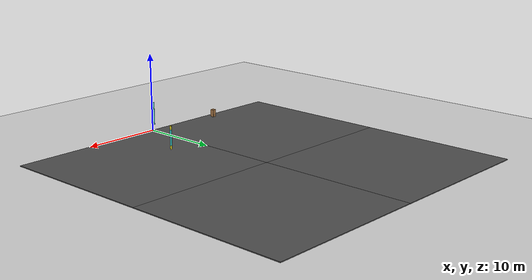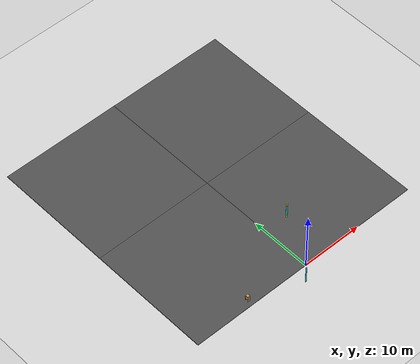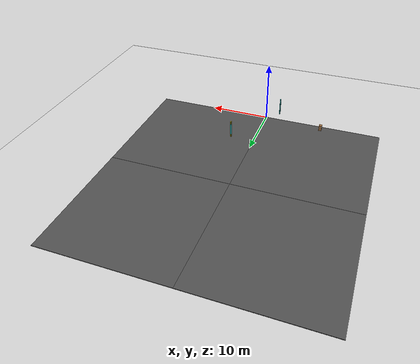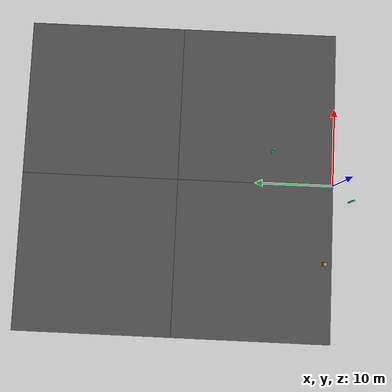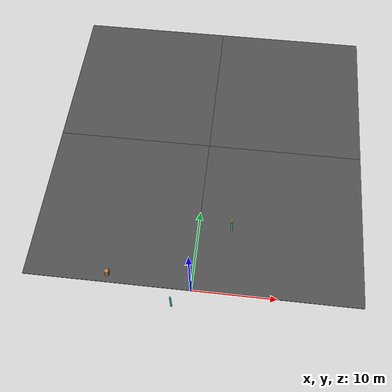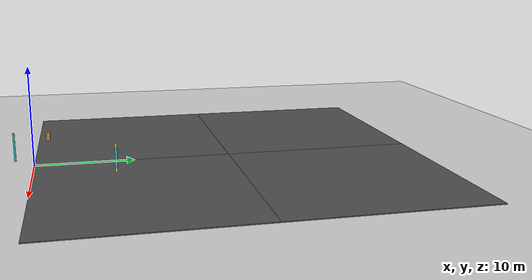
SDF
<sdf version="1.4">
 <world name="default">
  <model name="ground_plane">
   <static>1</static>
   <link name="link">
    <collision name="collision">
     <geometry><plane><normal>0 0 1</normal><size>100 100</size></plane></geometry>
     <surface><friction><ode><mu>100</mu><mu2>50</mu2></ode></friction></surface>
    </collision>
    <visual name="visual">
     <cast_shadows>0</cast_shadows>
     <geometry><plane><normal>0 0 1</normal><size>100 100</size></plane></geometry>
     <material>
      <script><uri>file://media/materials/scripts/gazebo.material</uri><name>Gazebo/Grey</name></script>
     </material>
    </visual>
    <velocity_decay><linear>0</linear><angular>0</angular></velocity_decay>
   </link>
  </model>
  <model name="mikey_goal4">
   <pose>4 8 1.5 0 -0 0</pose>
   <link name="link">
    <inertial>
     <mass>1000</mass>
     <inertia><ixx>1000</ixx><ixy>0</ixy><ixz>0</ixz><iyy>1000</iyy><iyz>0</iyz><izz>1000</izz></inertia>
    </inertial>
    <visual name="visual">
     <geometry><cylinder><radius>0.1</radius><length>3</length></cylinder></geometry>
     <material>
      <script><uri>file://media/materials/scripts/gazebo.material</uri><name>Gazebo/Yellow</name></script>
     </material>
    </visual>
    <velocity_decay><linear>0</linear><angular>0</angular></velocity_decay>
   </link>
   <static>1</static>
  </model>
  <model name="shredder_goal1">
   <pose>-2 -2 1.5 0 -0 0</pose>
   <link name="link">
    <inertial>
     <mass>1000</mass>
     <inertia><ixx>1000</ixx><ixy>0</ixy><ixz>0</ixz><iyy>1000</iyy><iyz>0</iyz><izz>1000</izz></inertia>
    </inertial>
    <visual name="visual">
     <geometry><cylinder><radius>0.1</radius><length>3</length></cylinder></geometry>
     <material>
      <script><uri>file://media/materials/scripts/gazebo.material</uri><name>Gazebo/Turquoise</name></script>
     </material>
    </visual>
    <velocity_decay><linear>0</linear><angular>0</angular></velocity_decay>
   </link>
   <static>1</static>
  </model>
  <model name="shredder_goal4">
   <pose>4 8 1.5 0 -0 0</pose>
   <link name="link">
    <inertial>
     <mass>1000</mass>
     <inertia><ixx>1000</ixx><ixy>0</ixy><ixz>0</ixz><iyy>1000</iyy><iyz>0</iyz><izz>1000</izz></inertia>
    </inertial>
    <visual name="visual">
     <geometry><cylinder><radius>0.12</radius><length>2</length></cylinder></geometry>
     <material>
      <script><uri>file://media/materials/scripts/gazebo.material</uri><name>Gazebo/Turquoise</name></script>
     </material>
    </visual>
    <velocity_decay><linear>0</linear><angular>0</angular></velocity_decay>
   </link>
   <static>1</static>
  </model>
  <model name="asphalt_plane">
   <static>1</static>
   <link name="link">
    <collision name="collision"><geometry><box><size>20 20 0.1</size></box></geometry></collision>
    <visual name="visual">
     <cast_shadows>0</cast_shadows>
     <geometry><box><size>20 20 0.1</size></box></geometry>
     <material>
      <script>
       <uri>model://asphalt_plane/materials/scripts</uri>
       <uri>model://asphalt_plane/materials/textures</uri>
       <name>vrc/asphalt</name>
      </script>
     </material>
    </visual>
    <velocity_decay><linear>0</linear><angular>0</angular></velocity_decay>
   </link>
   <pose>10 10 0 0 -0 0</pose>
  </model>
  <model name="asphalt_plane_0">
   <static>1</static>
   <link name="link">
    <collision name="collision"><geometry><box><size>20 20 0.1</size></box></geometry></collision>
    <visual name="visual">
     <cast_shadows>0</cast_shadows>
     <geometry><box><size>20 20 0.1</size></box></geometry>
     <material>
      <script>
       <uri>model://asphalt_plane/materials/scripts</uri>
       <uri>model://asphalt_plane/materials/textures</uri>
       <name>vrc/asphalt</name>
      </script>
     </material>
    </visual>
    <velocity_decay><linear>0</linear><angular>0</angular></velocity_decay>
   </link>
   <pose>-10 10 0 0 -0 0</pose>
  </model>
  <model name="asphalt_plane_12">
   <static>1</static>
   <link name="link">
    <collision name="collision"><geometry><box><size>20 20 0.1</size></box></geometry></collision>
    <visual name="visual">
     <cast_shadows>0</cast_shadows>
     <geometry><box><size>20 20 0.1</size></box></geometry>
     <material>
      <script>
       <uri>model://asphalt_plane/materials/scripts</uri>
       <uri>model://asphalt_plane/materials/textures</uri>
       <name>vrc/asphalt</name>
      </script>
     </material>
    </visual>
    <velocity_decay><linear>0</linear><angular>0</angular></velocity_decay>
   </link>
   <pose>10 30 0 0 -0 0</pose>
  </model>
  <model name="asphalt_plane_13">
   <static>1</static>
   <link name="link">
    <collision name="collision"><geometry><box><size>20 20 0.1</size></box></geometry></collision>
    <visual name="visual">
     <cast_shadows>0</cast_shadows>
     <geometry><box><size>20 20 0.1</size></box></geometry>
     <material>
      <script>
       <uri>model://asphalt_plane/materials/scripts</uri>
       <uri>model://asphalt_plane/materials/textures</uri>
       <name>vrc/asphalt</name>
      </script>
     </material>
    </visual>
    <velocity_decay><linear>0</linear><angular>0</angular></velocity_decay>
   </link>
   <pose>-10 30 0 0 -0 0</pose>
  </model>
  <model name="cabinet">
   <static>1</static>
   <link name="cabinet_bottom_plate">
    <inertial>
     <pose>0 0 -1 0 -0 0</pose>
     <inertia><ixx>2.05</ixx><ixy>0</ixy><ixz>0</ixz><iyy>2.05</iyy><iyz>0</iyz><izz>2.05</izz></inertia>
     <mass>25</mass>
    </inertial>
    <collision name="cabinet_bottom_plate_geom">
     <pose>0 0 0.01 0 -0 0</pose>
     <geometry><box><size>0.45 0.45 0.02</size></box></geometry>
    </collision>
    <visual name="cabinet_bottom_plate_geom_visual">
     <pose>0 0 0.01 0 -0 0</pose>
     <geometry><box><size>0.45 0.45 0.02</size></box></geometry>
     <material>
      <script><uri>file://media/materials/scripts/gazebo.material</uri><name>Gazebo/Wood</name></script>
     </material>
    </visual>
    <collision name="cabinet_bottom_plate_geom_cabinet_back_plate">
     <pose>0.235 0 0.51 0 -0 0</pose>
     <geometry><box><size>0.02 0.45 1.02</size></box></geometry>
    </collision>
    <visual name="cabinet_bottom_plate_geom_cabinet_back_plate_visual">
     <pose>0.235 0 0.51 0 -0 0</pose>
     <geometry><box><size>0.02 0.45 1.02</size></box></geometry>
     <material>
      <script><uri>file://media/materials/scripts/gazebo.material</uri><name>Gazebo/Wood</name></script>
     </material>
    </visual>
    <collision name="cabinet_bottom_plate_geom_cabinet_left_plate">
     <pose>0 0.235 0.51 0 -0 0</pose>
     <geometry><box><size>0.45 0.02 1.02</size></box></geometry>
    </collision>
    <visual name="cabinet_bottom_plate_geom_cabinet_left_plate_visual">
     <pose>0 0.235 0.51 0 -0 0</pose>
     <geometry><box><size>0.45 0.02 1.02</size></box></geometry>
     <material>
      <script><uri>file://media/materials/scripts/gazebo.material</uri><name>Gazebo/Wood</name></script>
     </material>
    </visual>
    <collision name="cabinet_bottom_plate_geom_cabinet_middle_plate">
     <pose>0 0 0.51 0 -0 0</pose>
     <geometry><box><size>0.45 0.45 0.02</size></box></geometry>
    </collision>
    <visual name="cabinet_bottom_plate_geom_cabinet_middle_plate_visual">
     <pose>0 0 0.51 0 -0 0</pose>
     <geometry><box><size>0.45 0.45 0.02</size></box></geometry>
     <material>
      <script><uri>file://media/materials/scripts/gazebo.material</uri><name>Gazebo/Wood</name></script>
     </material>
    </visual>
    <collision name="cabinet_bottom_plate_geom_cabinet_right_plate">
     <pose>0 -0.235 0.51 0 -0 0</pose>
     <geometry><box><size>0.45 0.02 1.02</size></box></geometry>
    </collision>
    <visual name="cabinet_bottom_plate_geom_cabinet_right_plate_visual">
     <pose>0 -0.235 0.51 0 -0 0</pose>
     <geometry><box><size>0.45 0.02 1.02</size></box></geometry>
     <material>
      <script><uri>file://media/materials/scripts/gazebo.material</uri><name>Gazebo/Wood</name></script>
     </material>
    </visual>
    <collision name="cabinet_bottom_plate_geom_cabinet_top_plate">
     <pose>0 0 1.01 0 -0 0</pose>
     <geometry><box><size>0.45 0.45 0.02</size></box></geometry>
    </collision>
    <visual name="cabinet_bottom_plate_geom_cabinet_top_plate_visual">
     <pose>0 0 1.01 0 -0 0</pose>
     <geometry><box><size>0.45 0.45 0.02</size></box></geometry>
     <material>
      <script><uri>file://media/materials/scripts/gazebo.material</uri><name>Gazebo/Wood</name></script>
     </material>
    </visual>
    <velocity_decay><linear>0</linear><angular>0</angular></velocity_decay>
   </link>
   <pose>-10 1 0 0 -0 0</pose>
  </model>
 </world>
</sdf>
